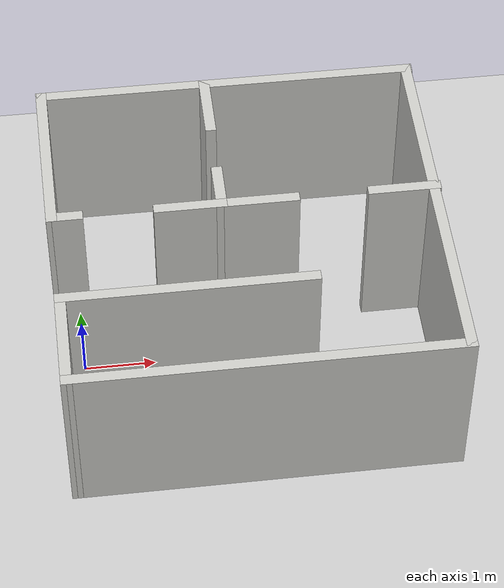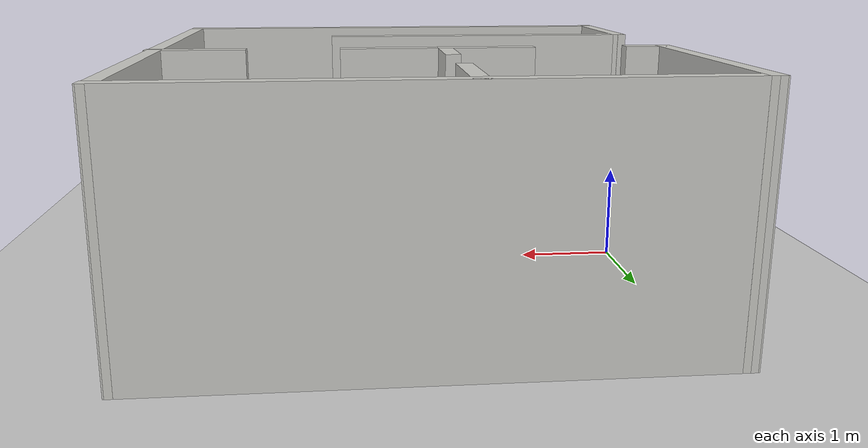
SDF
<sdf version="1.7">
 <world name="default">
  <light name="sun" type="directional">
   <pose>0 0 10 0 -0 0</pose>
   <diffuse>0.8 0.8 0.8 1</diffuse>
   <specular>0.2 0.2 0.2 1</specular>
   <attenuation>
    <range>1000</range>
    <constant>0.9</constant>
    <linear>0.01</linear>
    <quadratic>0.001</quadratic>
   </attenuation>
   <direction>-0.5 0.1 -0.9</direction>
   <spot><inner_angle>0</inner_angle><outer_angle>0</outer_angle><falloff>0</falloff></spot>
  </light>
  <model name="ground_plane">
   <static>1</static>
   <link name="link">
    <collision name="collision">
     <geometry><plane><normal>0 0 1</normal><size>100 100</size></plane></geometry>
     <surface>
      <contact><collide_bitmask>65535</collide_bitmask></contact>
      <friction><ode><mu>100</mu><mu2>50</mu2></ode></friction>
     </surface>
    </collision>
    <visual name="visual">
     <cast_shadows>0</cast_shadows>
     <geometry><plane><normal>0 0 1</normal><size>100 100</size></plane></geometry>
     <material>
      <script><uri>file://media/materials/scripts/gazebo.material</uri><name>Gazebo/Grey</name></script>
     </material>
    </visual>
   </link>
  </model>
  <gravity>0 0 -9.8</gravity>
  <magnetic_field>6e-06 2.3e-05 -4.2e-05</magnetic_field>
  <atmosphere type="adiabatic"/>
  <physics type="ode">
   <max_step_size>0.001</max_step_size>
   <real_time_factor>1</real_time_factor>
   <real_time_update_rate>1000</real_time_update_rate>
  </physics>
  <scene><ambient>0.4 0.4 0.4 1</ambient><background>0.7 0.7 0.7 1</background><shadows>1</shadows></scene>
  <spherical_coordinates>
   <surface_model>EARTH_WGS84</surface_model>
   <latitude_deg>0</latitude_deg>
   <longitude_deg>0</longitude_deg>
   <elevation>0</elevation>
   <heading_deg>0</heading_deg>
  </spherical_coordinates>
  <model name="WH_new_final">
   <pose>2.33032 0.4238 0 0 -0 0</pose>
   <link name="Wall_12">
    <collision name="Wall_12_Collision">
     <geometry><box><size>5.35582 0.15 2.5</size></box></geometry>
     <pose>0 0 1.25 0 -0 0</pose>
    </collision>
    <visual name="Wall_12_Visual">
     <pose>0 0 1.25 0 -0 0</pose>
     <geometry><box><size>5.35582 0.15 2.5</size></box></geometry>
     <material>
      <script><uri>file://media/materials/scripts/gazebo.material</uri><name>Gazebo/CeilingTiled</name></script>
      <ambient>0.921569 0.807843 0.615686 1</ambient>
     </material>
     <meta><layer>0</layer></meta>
    </visual>
    <pose>-0.000838 2.53222 0 0 -0 3.13905</pose>
   </link>
   <link name="Wall_13">
    <collision name="Wall_13_Collision">
     <geometry><box><size>2.46059 0.15 2.5</size></box></geometry>
     <pose>0 0 1.25 0 -0 0</pose>
    </collision>
    <visual name="Wall_13_Visual">
     <pose>0 0 1.25 0 -0 0</pose>
     <geometry><box><size>2.46059 0.15 2.5</size></box></geometry>
     <material>
      <script><uri>file://media/materials/scripts/gazebo.material</uri><name>Gazebo/CeilingTiled</name></script>
      <ambient>0.921569 0.807843 0.615686 1</ambient>
     </material>
     <meta><layer>0</layer></meta>
    </visual>
    <pose>-2.61031 1.38356 0 0 -0 -1.5651</pose>
   </link>
   <link name="Wall_14">
    <collision name="Wall_14_Collision">
     <geometry><box><size>0.5 0.15 2.5</size></box></geometry>
     <pose>0 0 1.25 0 -0 0</pose>
    </collision>
    <visual name="Wall_14_Visual">
     <pose>0 0 1.25 0 -0 0</pose>
     <geometry><box><size>0.5 0.15 2.5</size></box></geometry>
     <material>
      <script><uri>file://media/materials/scripts/gazebo.material</uri><name>Gazebo/CeilingTiled</name></script>
      <ambient>0.921569 0.807843 0.615686 1</ambient>
     </material>
     <meta><layer>0</layer></meta>
    </visual>
    <pose>-2.42874 0.228285 0 0 -0 0</pose>
   </link>
   <link name="Wall_16">
    <collision name="Wall_16_Collision">
     <geometry><box><size>1 0.15 2.5</size></box></geometry>
     <pose>0 0 1.25 0 -0 0</pose>
    </collision>
    <visual name="Wall_16_Visual">
     <pose>0 0 1.25 0 -0 0</pose>
     <geometry><box><size>1 0.15 2.5</size></box></geometry>
     <material>
      <script><uri>file://media/materials/scripts/gazebo.material</uri><name>Gazebo/CeilingTiled</name></script>
      <ambient>0.921569 0.807843 0.615686 1</ambient>
     </material>
     <meta><layer>0</layer></meta>
    </visual>
    <pose>-0.728738 0.228285 0 0 -0 0</pose>
   </link>
   <link name="Wall_17">
    <collision name="Wall_17_Collision">
     <geometry><box><size>0.750062 0.15 2.5</size></box></geometry>
     <pose>0 0 1.25 0 -0 0</pose>
    </collision>
    <visual name="Wall_17_Visual">
     <pose>0 0 1.25 0 -0 0</pose>
     <geometry><box><size>0.750062 0.15 2.5</size></box></geometry>
     <material>
      <script><uri>file://media/materials/scripts/gazebo.material</uri><name>Gazebo/CeilingTiled</name></script>
      <ambient>0.921569 0.807843 0.615686 1</ambient>
     </material>
     <meta><layer>0</layer></meta>
    </visual>
    <pose>-0.303738 0.528285 0 0 -0 1.5708</pose>
   </link>
   <link name="Wall_19">
    <collision name="Wall_19_Collision">
     <geometry><box><size>1.13716 0.15 2.5</size></box></geometry>
     <pose>0 0 1.25 0 -0 0</pose>
    </collision>
    <visual name="Wall_19_Visual">
     <pose>0 0 1.25 0 -0 0</pose>
     <geometry><box><size>1.13716 0.15 2.5</size></box></geometry>
     <material>
      <script><uri>file://media/materials/scripts/gazebo.material</uri><name>Gazebo/CeilingTiled</name></script>
      <ambient>0.921569 0.807843 0.615686 1</ambient>
     </material>
     <meta><layer>0</layer></meta>
    </visual>
    <pose>0.189841 0.227732 0 0 -0 -0.001119</pose>
   </link>
   <link name="Wall_21">
    <collision name="Wall_21_Collision">
     <geometry><box><size>1 0.15 2.5</size></box></geometry>
     <pose>0 0 1.25 0 -0 0</pose>
    </collision>
    <visual name="Wall_21_Visual">
     <pose>0 0 1.25 0 -0 0</pose>
     <geometry><box><size>1 0.15 2.5</size></box></geometry>
     <material>
      <script><uri>file://media/materials/scripts/gazebo.material</uri><name>Gazebo/CeilingTiled</name></script>
      <ambient>0.921569 0.807843 0.615686 1</ambient>
     </material>
     <meta><layer>0</layer></meta>
    </visual>
    <pose>2.19231 0.228285 0 0 -0 0</pose>
   </link>
   <link name="Wall_24">
    <collision name="Wall_24_Collision">
     <geometry><box><size>1 0.15 2.5</size></box></geometry>
     <pose>0 0 1.25 0 -0 0</pose>
    </collision>
    <visual name="Wall_24_Visual">
     <pose>0 0 1.25 0 -0 0</pose>
     <geometry><box><size>1 0.15 2.5</size></box></geometry>
     <material>
      <script><uri>file://media/materials/scripts/gazebo.material</uri><name>Gazebo/CeilingTiled</name></script>
      <ambient>0.921569 0.807843 0.615686 1</ambient>
     </material>
     <meta><layer>0</layer></meta>
    </visual>
    <pose>-0.303738 2.10329 0 0 -0 1.5708</pose>
   </link>
   <link name="Wall_5">
    <collision name="Wall_5_Collision">
     <geometry><box><size>1.5 0.15 2.5</size></box></geometry>
     <pose>0 0 1.25 0 -0 0</pose>
    </collision>
    <visual name="Wall_5_Visual">
     <pose>0 0 1.25 0 -0 0</pose>
     <geometry><box><size>1.5 0.15 2.5</size></box></geometry>
     <material>
      <script><uri>file://media/materials/scripts/gazebo.material</uri><name>Gazebo/CeilingTiled</name></script>
      <ambient>0.921569 0.807843 0.615686 1</ambient>
     </material>
     <meta><layer>0</layer></meta>
    </visual>
    <pose>-2.57201 -1.8642 0 0 -0 1.5708</pose>
   </link>
   <link name="Wall_6">
    <collision name="Wall_6_Collision">
     <geometry><box><size>3.5 0.15 2.5</size></box></geometry>
     <pose>0 0 1.25 0 -0 0</pose>
    </collision>
    <visual name="Wall_6_Visual">
     <pose>0 0 1.25 0 -0 0</pose>
     <geometry><box><size>3.5 0.15 2.5</size></box></geometry>
     <material>
      <script><uri>file://media/materials/scripts/gazebo.material</uri><name>Gazebo/CeilingTiled</name></script>
      <ambient>0.921569 0.807843 0.615686 1</ambient>
     </material>
     <meta><layer>0</layer></meta>
    </visual>
    <pose>-0.897008 -1.1892 0 0 -0 0</pose>
   </link>
   <link name="Wall_8">
    <collision name="Wall_8_Collision">
     <geometry><box><size>5.32439 0.15 2.5</size></box></geometry>
     <pose>0 0 1.25 0 -0 0</pose>
    </collision>
    <visual name="Wall_8_Visual">
     <pose>0 0 1.25 0 -0 0</pose>
     <geometry><box><size>5.32439 0.15 2.5</size></box></geometry>
     <material>
      <script><uri>file://media/materials/scripts/gazebo.material</uri><name>Gazebo/CeilingTiled</name></script>
      <ambient>0.921569 0.807843 0.615686 1</ambient>
     </material>
     <meta><layer>0</layer></meta>
    </visual>
    <pose>0.015027 -2.53707 0 0 -0 0.000823</pose>
   </link>
   <link name="Wall_9">
    <collision name="Wall_9_Collision">
     <geometry><box><size>5.18412 0.15 2.5</size></box></geometry>
     <pose>0 0 1.25 0 -0 0</pose>
    </collision>
    <visual name="Wall_9_Visual">
     <pose>0 0 1.25 0 -0 0</pose>
     <geometry><box><size>5.18412 0.15 2.5</size></box></geometry>
     <material>
      <script><uri>file://media/materials/scripts/gazebo.material</uri><name>Gazebo/CeilingTiled</name></script>
      <ambient>0.921569 0.807843 0.615686 1</ambient>
     </material>
     <meta><layer>0</layer></meta>
    </visual>
    <pose>2.59549 0.008559 0 0 -0 1.57341</pose>
   </link>
   <static>1</static>
  </model>
  <model name="aruco_visual_marker_3">
   <link name="marker">
    <visual name="visual">
     <geometry><box><size>0.09 0.09 0.001</size></box></geometry>
     <material>
      <script>
       <uri>model://aruco_visual_marker_3/materials/scripts</uri>
       <uri>model://aruco_visual_marker_3/materials/textures</uri>
       <name>ArucoVisualMarker3/Marker</name>
      </script>
      <ambient>1 1 1 1</ambient>
      <diffuse>1 1 1 1</diffuse>
      <specular>0 0 0 1</specular>
      <emissive>1 1 1 0</emissive>
      <shader type="vertex"><normal_map>__default__</normal_map></shader>
     </material>
    </visual>
    <collision name="collision"><geometry><box><size>0.09 0.09 0.001</size></box></geometry></collision>
   </link>
   <link name="marker_pad">
    <pose relative_to="marker">0 0 -1e-05 0 -0 0</pose>
    <visual name="visual">
     <geometry><box><size>0.09 0.09 0.001</size></box></geometry>
     <material>
      <lighting>1</lighting>
      <script><uri>file://media/materials/scripts/gazebo.material</uri><name>Gazebo/White</name></script>
      <ambient>0.3 0.3 0.3 1</ambient>
      <diffuse>0.7 0.7 0.7 1</diffuse>
      <specular>0.01 0.01 0.01 1</specular>
      <emissive>1 1 1 0</emissive>
      <shader type="vertex"><normal_map>__default__</normal_map></shader>
     </material>
    </visual>
    <collision name="collision"><geometry><box><size>0.09 0.09 0.001</size></box></geometry></collision>
   </link>
   <joint name="marker_JOINT_marker_pad" type="revolute">
    <parent>marker</parent>
    <child>marker_pad</child>
    <axis>
     <xyz>0 0 1</xyz>
     <limit><upper>0</upper><lower>0</lower></limit>
     <dynamics><spring_reference>0</spring_reference><spring_stiffness>0</spring_stiffness></dynamics>
    </axis>
   </joint>
   <static>1</static>
   <pose>4.84957 -1.68036 0.429199 0 -1.55964 0</pose>
  </model>
  <model name="aruco_visual_marker_1">
   <link name="marker">
    <visual name="visual">
     <geometry><box><size>0.09 0.09 0.001</size></box></geometry>
     <material>
      <script>
       <uri>model://aruco_visual_marker_1/materials/scripts</uri>
       <uri>model://aruco_visual_marker_1/materials/textures</uri>
       <name>ArucoVisualMarker1/Marker</name>
      </script>
      <ambient>1 1 1 1</ambient>
      <diffuse>1 1 1 1</diffuse>
      <specular>0 0 0 1</specular>
      <emissive>1 1 1 0</emissive>
      <shader type="vertex"><normal_map>__default__</normal_map></shader>
     </material>
    </visual>
    <collision name="collision"><geometry><box><size>0.09 0.09 0.001</size></box></geometry></collision>
   </link>
   <link name="marker_pad">
    <pose relative_to="marker">0 0 -1e-05 0 -0 0</pose>
    <visual name="visual">
     <geometry><box><size>0.09 0.09 0.001</size></box></geometry>
     <material>
      <lighting>1</lighting>
      <script><uri>file://media/materials/scripts/gazebo.material</uri><name>Gazebo/White</name></script>
      <ambient>0.3 0.3 0.3 1</ambient>
      <diffuse>0.7 0.7 0.7 1</diffuse>
      <specular>0.01 0.01 0.01 1</specular>
      <emissive>1 1 1 0</emissive>
      <shader type="vertex"><normal_map>__default__</normal_map></shader>
     </material>
    </visual>
    <collision name="collision"><geometry><box><size>0.09 0.09 0.001</size></box></geometry></collision>
   </link>
   <joint name="marker_JOINT_marker_pad" type="revolute">
    <parent>marker</parent>
    <child>marker_pad</child>
    <axis>
     <xyz>0 0 1</xyz>
     <limit><upper>0</upper><lower>0</lower></limit>
     <dynamics><spring_reference>0</spring_reference><spring_stiffness>0</spring_stiffness></dynamics>
    </axis>
   </joint>
   <static>1</static>
   <pose>0.016024 -1.45694 0.233923 0.711864 -1.52385 2.47081</pose>
  </model>
 </world>
</sdf>
